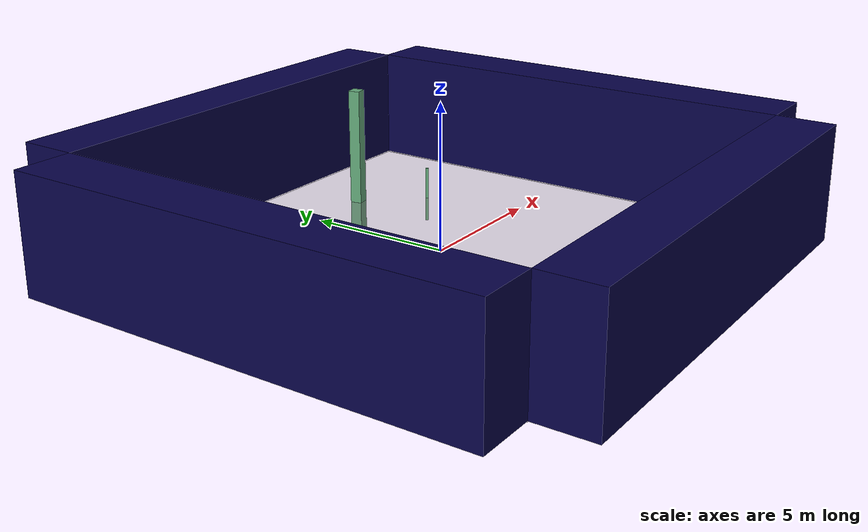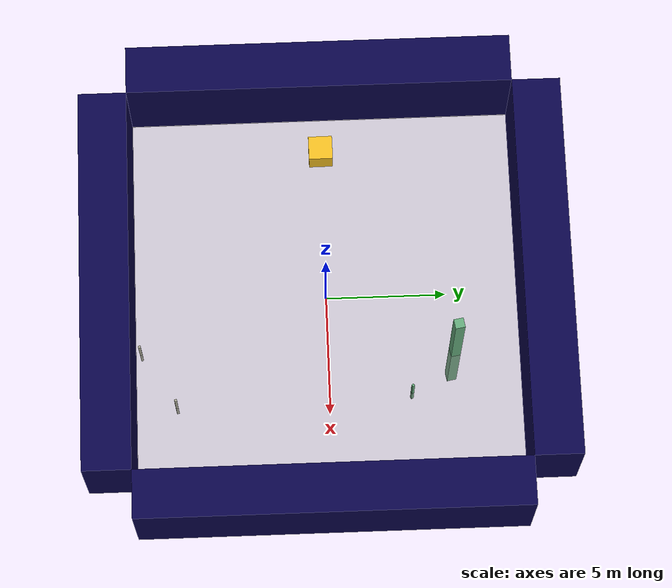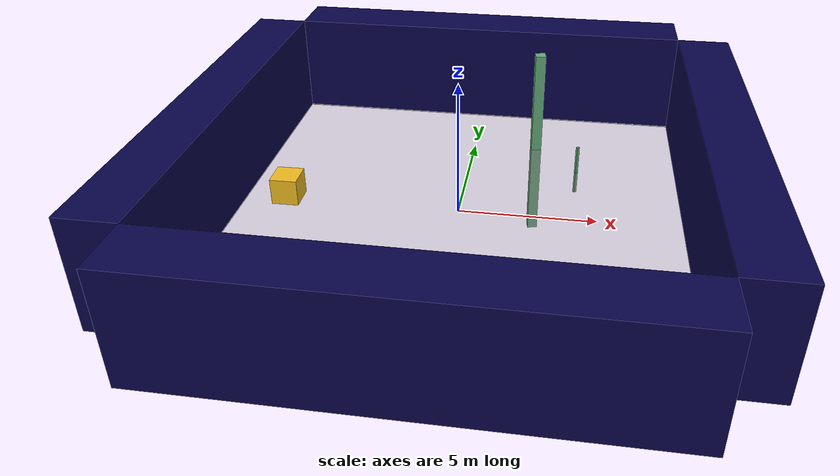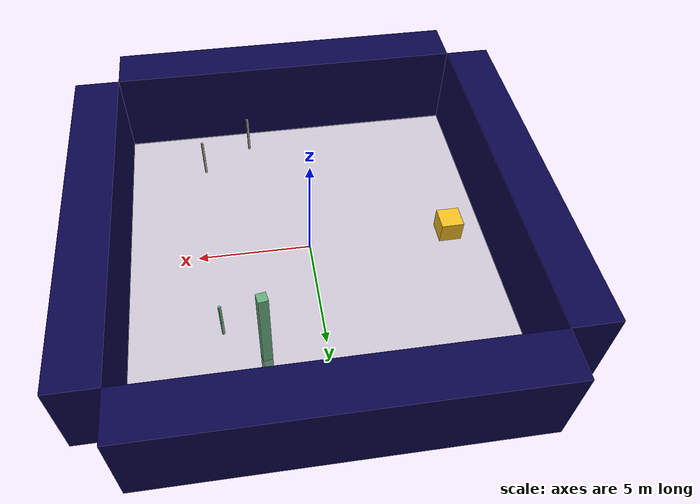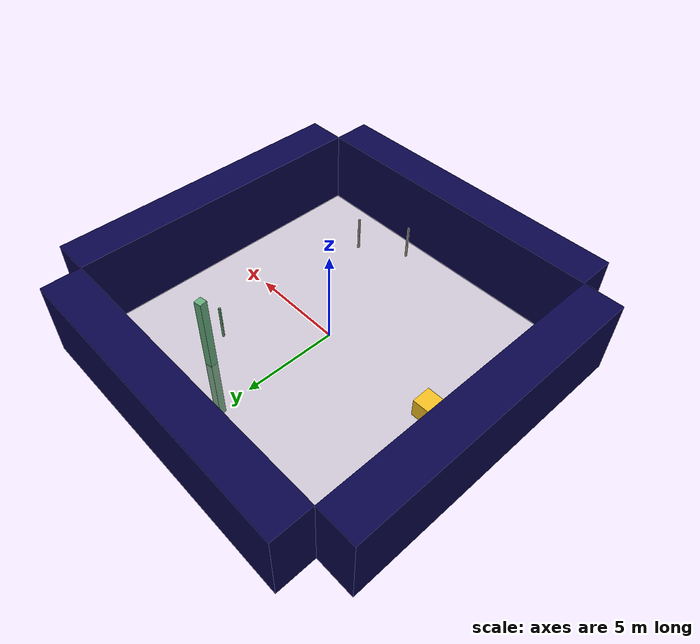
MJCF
<mujoco model="unnamed_model">
  <default>
    <default class="/" />
    <default class="border/" />
    <default class="border_1/" />
    <default class="border_2/" />
    <default class="border_3/" />
    <default class="light/" />
    <default class="agent/" />
    <default class="apple0/" />
    <default class="apple1/" />
    <default class="stone/" />
    <default class="stone_1/" />
  </default>
  <worldbody>
    <body name="border/">
      <body name="border/border" pos="0 9 2">
        <geom name="border/border_geom" class="border/" type="box" size="8.0 1.0 2.0" rgba="0.035 0.016 0.29 1.0" />
      </body>
    </body>
    <body name="border_1/">
      <body name="border_1/border" pos="0 -9 2">
        <geom name="border_1/border_geom" class="border_1/" type="box" size="8.0 1.0 2.0" rgba="0.035 0.016 0.29 1.0" />
      </body>
    </body>
    <body name="border_2/">
      <body name="border_2/border" pos="9 0 2">
        <geom name="border_2/border_geom" class="border_2/" type="box" size="1.0 8.0 2.0" rgba="0.035 0.016 0.29 1.0" />
      </body>
    </body>
    <body name="border_3/">
      <body name="border_3/border" pos="-9 0 2">
        <geom name="border_3/border_geom" class="border_3/" type="box" size="1.0 8.0 2.0" rgba="0.035 0.016 0.29 1.0" />
      </body>
    </body>
    <body name="light/">
      <body name="light/light" pos="0 0 15">
        <geom name="light/light_geom" class="light/" size="0.5" rgba="1.0 1.0 1.0 0.0" />
        <light name="light//unnamed_light_0" class="light/" />
      </body>
    </body>
    <body euler="0 0 270.5777621188044" name="agent/" pos="-6.4000000000000004 0 0.5">
      <joint name="agent/boxagent_freeJoint/" class="/" type="free" />
      <body name="agent/agent" pos="0 0 0" euler="0 0 0">
        <geom name="agent/boxagent_geom" class="agent/" type="box" size="0.5 0.5 0.5" rgba="0.949 0.7451 0.1333 1.0" euler="0 0 0" />
        <camera name="agent/boxagent_camera" class="agent/" fovy="90" pos="0 0 0.25" euler="-90 180 0" />
      </body>
    </body>
    <body name="apple0/">
      <body name="apple0/apple0" pos="4.1816500000000003 3.4436 0.10000000000000001" euler="0 0 120.54808797545974">
        <geom name="apple0/apple_geom" class="apple0/" type="box" size="0.05 0.05 1.0" rgba="0.396078431372549 0.6705882352941176 0.48627450980392156 1.0" />
      </body>
    </body>
    <body name="apple1/">
      <body name="apple1/apple1" pos="2.4790999999999999 5.2901999999999987 0.10000000000000001" euler="0 0 100.0378378958427">
        <geom name="apple1/apple_geom" class="apple1/" type="box" size="0.2 0.2 4.0" rgba="0.396078431372549 0.6705882352941176 0.48627450980392156 1.0" />
      </body>
    </body>
    <body name="stone/">
      <body name="stone/stone" pos="4.4766500000000002 -6.3404999999999996 0.10000000000000001" euler="0 0 -73.804410611758968">
        <geom name="stone/stone_geom" class="stone/" type="box" size="0.05 0.05 1.0" rgba="0.6470588235294118 0.6392156862745098 0.5686274509803921 1.0" />
      </body>
    </body>
    <body name="stone_1/">
      <body name="stone_1/stone" pos="2.1311499999999999 -7.7942999999999998 0.10000000000000001" euler="0 0 -77.864498094067827">
        <geom name="stone_1/stone_geom" class="stone_1/" type="box" size="0.05 0.05 1.0" rgba="0.6470588235294118 0.6392156862745098 0.5686274509803921 1.0" />
      </body>
    </body>
    <geom name="base_plane" class="/" type="plane" size="8 8 0.10000000000000001" />
  </worldbody>
</mujoco>
